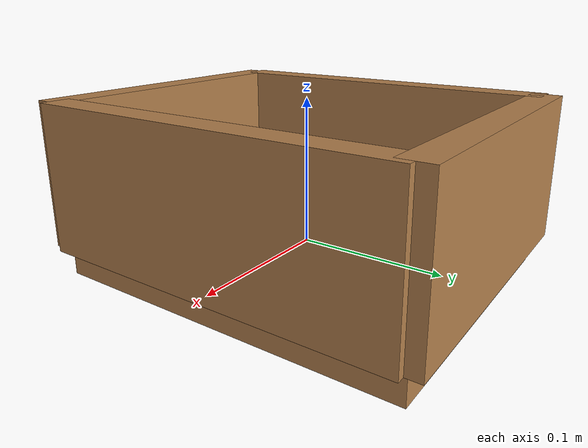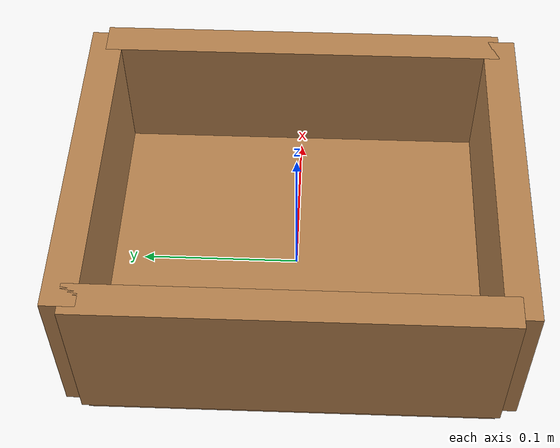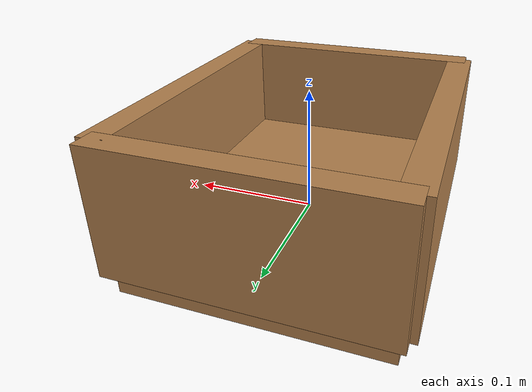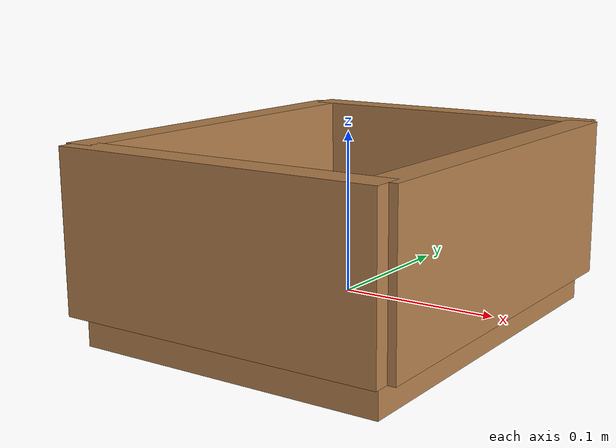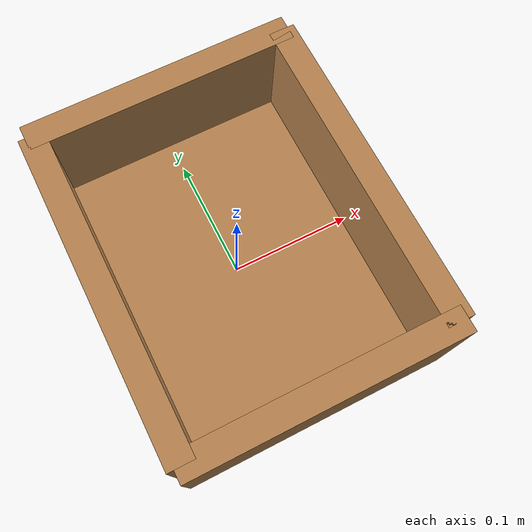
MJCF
<mujoco model="bin_light_wood">
    <asset>
        <texture file="textures/light-wood.png" type="2d" name="tex-light-wood" />
        <material name="light-wood" reflectance="0.7" texrepeat="15 15" texture="tex-light-wood"
            texuniform="true" />
    </asset>
    <worldbody>
        <body name="bin_light_wood">
            <!-- bottom -->
            <geom pos="0 0 0" size="0.1 0.125 0.02" type="box" group="0" friction="1 0.005 0.0001" rgba="1 0 0 0" />
            <geom pos="0 0 0" size="0.1 0.125 0.02" type="box" conaffinity="0" contype="0" group="1" material="light-wood" />

            <!-- side 1 -->
            <geom pos="0 0.125 0.05" size="0.105 0.01 0.05" type="box" group="0" friction="1 0.005 0.0001" rgba="1 0 0 0" />
            <geom pos="0 0.125 0.05" size="0.105 0.01 0.05" type="box" conaffinity="0" contype="0" group="1" material="light-wood" />

            <!-- side 2 -->
            <geom pos="0 -0.125 0.05" size="0.105 0.01 0.05" type="box" group="0" friction="1 0.005 0.0001" rgba="1 0 0 0" />
            <geom pos="0 -0.125 0.05" size="0.105 0.01 0.05" type="box" conaffinity="0" contype="0" group="1" material="light-wood" />

            <!-- side 3 -->
            <geom pos="0.1 0 0.05" size="0.01 0.125 0.05" type="box" group="0" friction="1 0.005 0.0001" rgba="1 0 0 0" />
            <geom pos="0.1 0 0.05" size="0.01 0.125 0.05" type="box" conaffinity="0" contype="0" group="1" material="light-wood" />

            <!-- side 4 -->
            <geom pos="-0.1 0 0.05" size="0.01 0.125 0.05" type="box" group="0" friction="1 0.005 0.0001" rgba="1 0 0 0" />
            <geom pos="-0.1 0 0.05" size="0.01 0.125 0.05" type="box" conaffinity="0" contype="0" group="1" material="light-wood" />
        </body>
    </worldbody>
</mujoco>
